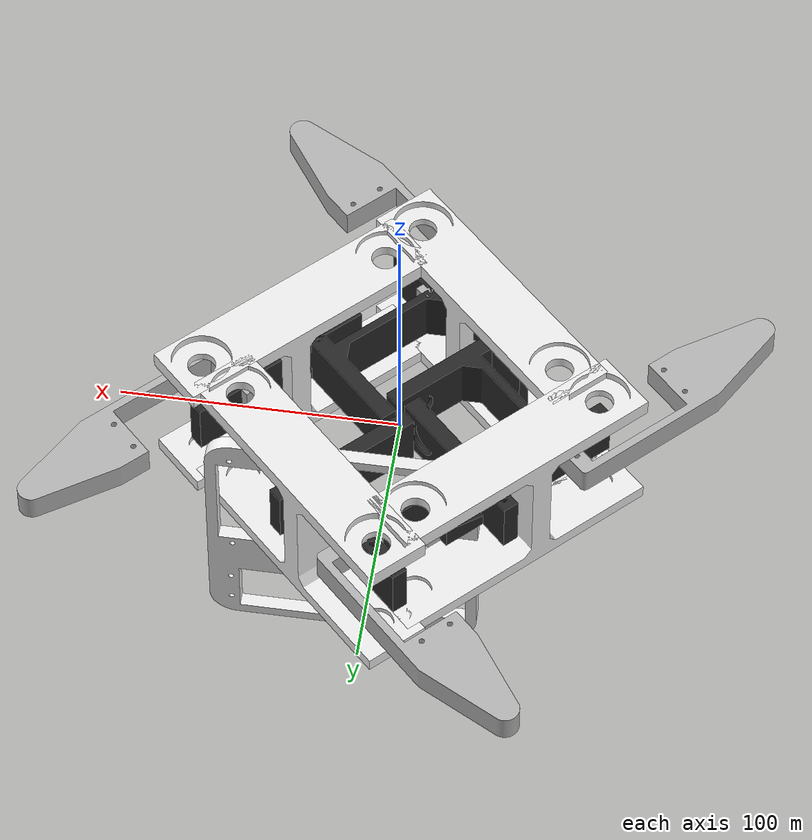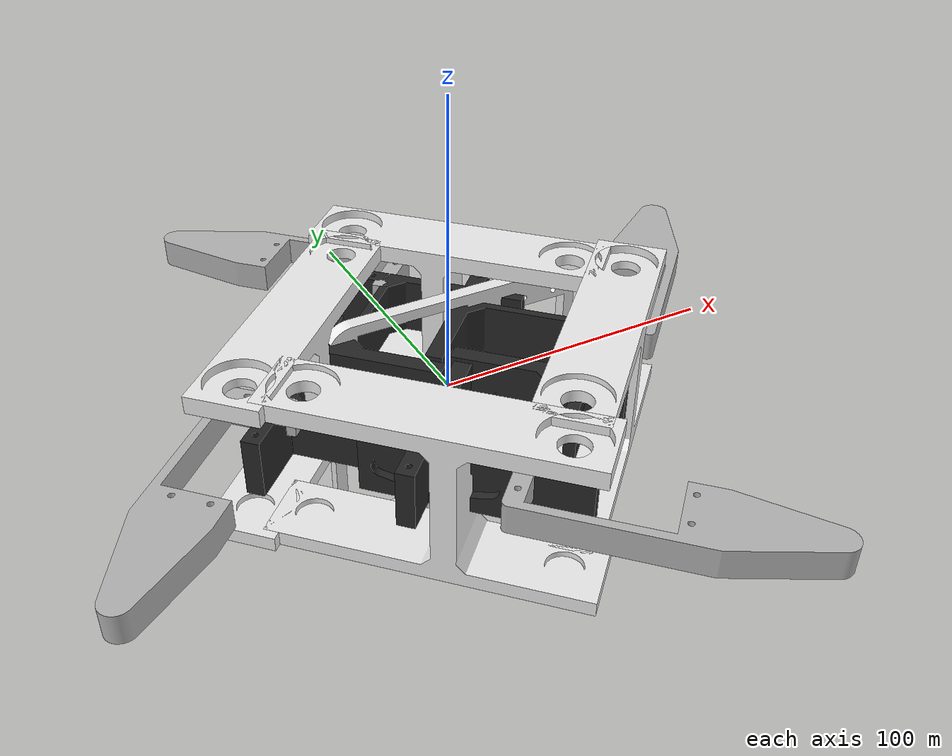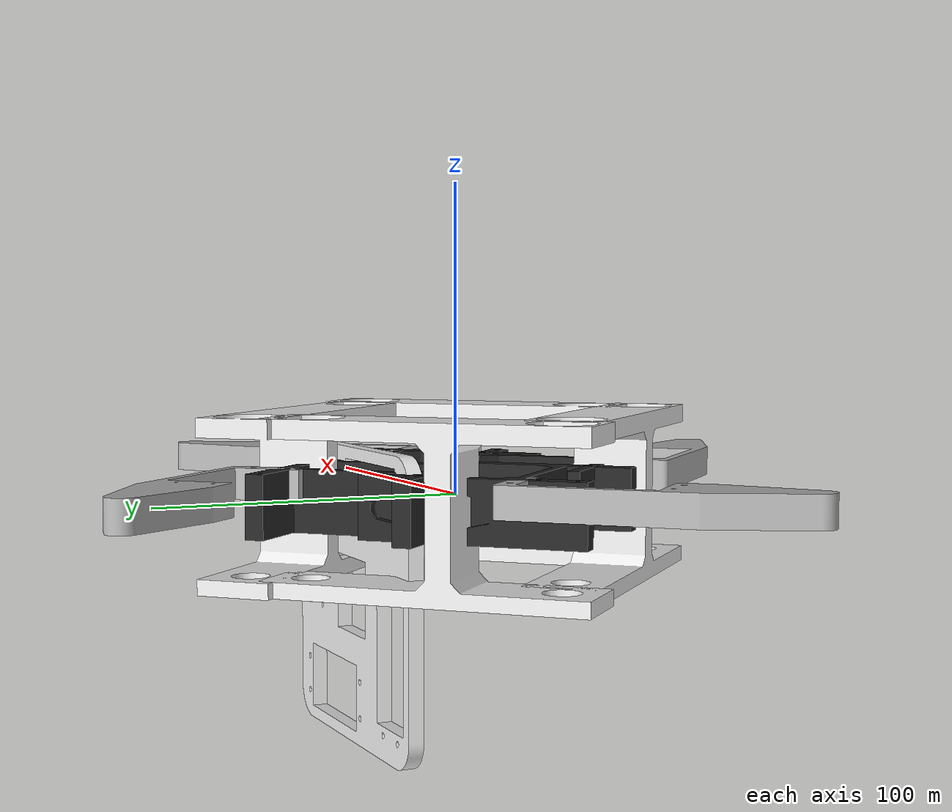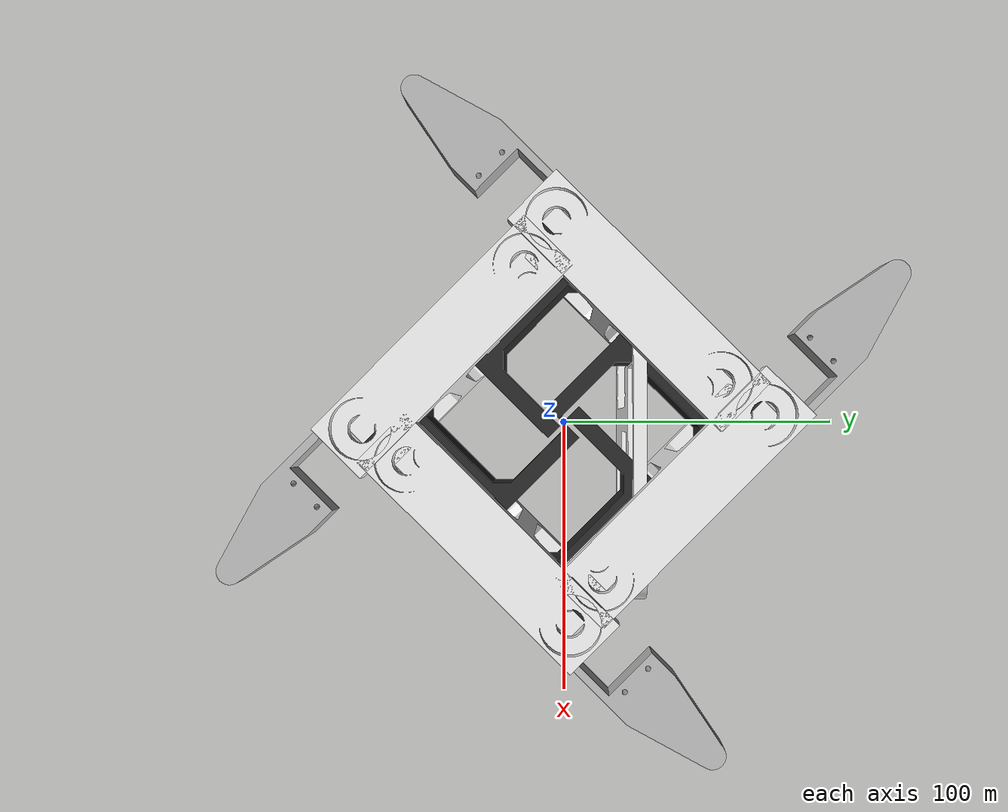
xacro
<?xml version="1.0"?>
<robot xmlns:xacro="http://www.ros.org/wiki/xacro" name="quadruped">

  <!-- [USER PARAMETERS]: EDIT CHASSIS & LINK DIMENSIONS, MASSES & MESH PATHS -->
  <!-- SPIDER / CRAWLER 12-DOF CONFIGURATION (Radial Outward Legs)            -->

  <!-- Set to 'true' once you place STL files in quadruped_description/meshes/ -->
  <xacro:property name="use_mesh_visuals" value="true" />

  <!-- Base / Central Chassis Dimensions (meters) & Mass (kg) -->
  <!-- USER EDIT: Center hub measurements -->
  <xacro:property name="body_length"  value="0.097" />
  <xacro:property name="body_width"   value="0.097" />
  <xacro:property name="body_height"  value="0.017" />
  <xacro:property name="body_mass"    value="0.240" />  <!-- Central frame, battery, controller -->

  <!-- Leg Mount Radius & Radial Offsets from Center -->
  <!-- Base is 97mm x 97mm. Hip yaw servo shafts are located at +/- 30mm, +/- 30mm -->
  <xacro:property name="mount_x"      value="0.030" />
  <xacro:property name="mount_y"      value="0.030" />

  <!-- Coxa / Hip Link Dimensions (meters) & Mass (kg) -->
  <!-- Extrapolated from CAD top-view: joint-to-joint length = 40.0mm (Hip Yaw to Thigh Pitch) -->
  <xacro:property name="coxa_length"  value="0.040" />
  <xacro:property name="coxa_width"   value="0.021" />
  <xacro:property name="coxa_height"  value="0.038" />
  <xacro:property name="coxa_mass"    value="0.066" />  <!-- U-bracket + 1x MG995/MG996 servo (~55g) -->

  <!-- Thigh / Upper Leg Link Dimensions (meters) & Mass (kg) -->
  <!-- Onshape CAD extracted: bar length = 104mm, height = 24mm, hole-to-hole = 75mm -->
  <xacro:property name="thigh_length" value="0.075" />
  <xacro:property name="thigh_width"  value="0.055" />
  <xacro:property name="thigh_height" value="0.024" />
  <xacro:property name="thigh_mass"   value="0.081" />  <!-- H-frame + 1x MG995 knee servo (~55g) -->

  <!-- Calf / Lower Leg Link / Tibia Dimensions (meters) & Mass (kg) -->
  <!-- Onshape CAD extracted: knee axis to foot tip = 80mm, max height = 26mm, thickness = 11mm -->
  <xacro:property name="calf_length"  value="0.080" />
  <xacro:property name="calf_width"   value="0.011" />
  <xacro:property name="calf_height"  value="0.026" />
  <xacro:property name="calf_mass"    value="0.0635" />  <!-- 3D printed pointed horn -->

  <!-- Foot Contact Tip -->
  <xacro:property name="foot_radius"  value="0.010" />
  <xacro:property name="foot_mass"    value="0.008" />

  <!-- Joint Limits for Spider Configuration (radians) -->
  <!-- Hip Yaw: Sweeps horizontally +/- 45 deg (+/- 0.8 rad) -->
  <xacro:property name="hip_yaw_lower"     value="-0.80" />
  <xacro:property name="hip_yaw_upper"     value="0.80" />
  <!-- Thigh Pitch: 0 = flat horizontal (as in photo), >0 = tilts downward -->
  <xacro:property name="thigh_pitch_lower" value="-0.60" />
  <xacro:property name="thigh_pitch_upper" value="1.30" />
  <!-- Knee Pitch: 0 = straight in line with thigh, >0 = bends downward -->
  <xacro:property name="knee_pitch_lower"  value="-0.40" />
  <xacro:property name="knee_pitch_upper"  value="2.00" />

  <xacro:property name="servo_max_velocity" value="6.0" />  <!-- MG996R ~0.17s/60 deg = 6.1 rad/s -->
  <xacro:property name="servo_max_effort"   value="1.0" />  <!-- MG996R ~10 kg.cm = ~1.0 Nm stall -->

  <!-- Mesh File Locations (Relative to quadruped_description/meshes/) -->
  <!-- USER EDIT: Modify file names if your STL files have different names -->
  <xacro:property name="mesh_body"  value="package://quadruped_description/meshes/CentralFrame.stl" />
  <xacro:property name="mesh_hip"   value="package://quadruped_description/meshes/Fema.stl" />
  <xacro:property name="mesh_thigh" value="package://quadruped_description/meshes/Shin.stl" />
  <xacro:property name="mesh_calf"  value="package://quadruped_description/meshes/Foot.stl" />
  <xacro:property name="mesh_foot"  value="package://quadruped_description/meshes/foot.stl" />

  <!-- Visual Materials -->
  <material name="chassis_white">
    <color rgba="0.92 0.92 0.92 1.0"/>
  </material>
  <material name="servo_black">
    <color rgba="0.15 0.15 0.15 1.0"/>
  </material>
  <material name="accent_gray">
    <color rgba="0.70 0.70 0.70 1.0"/>
  </material>
  <material name="rubber_black">
    <color rgba="0.10 0.10 0.10 1.0"/>
  </material>

  <!-- BASE FOOTPRINT & BASE LINK (Central Spider Hub)                       -->
  <link name="base_footprint"/>

  <joint name="base_footprint_joint" type="fixed">
    <parent link="base_footprint"/>
    <child link="base_link"/>
    <origin xyz="0 0 0.12" rpy="0 0 0"/>
  </joint>

  <link name="base_link">
    <visual>
      <origin xyz="0 0 0" rpy="0 0 0"/>
      <geometry>
        <xacro:if value="${use_mesh_visuals}">
          <mesh filename="${mesh_body}" scale="1 1 1"/>
        </xacro:if>
        <xacro:unless value="${use_mesh_visuals}">
          <box size="${body_length} ${body_width} ${body_height}"/>
        </xacro:unless>
      </geometry>
      <material name="chassis_white"/>
    </visual>
    <collision>
      <origin xyz="0 0 0" rpy="0 0 0"/>
      <geometry>
        <box size="${body_length} ${body_width} ${body_height}"/>
      </geometry>
    </collision>
    <inertial>
      <origin xyz="0 0 0" rpy="0 0 0"/>
      <mass value="${body_mass}"/>
      <inertia ixx="${(1.0/12.0) * body_mass * (body_width*body_width + body_height*body_height)}"
               ixy="0.0" ixz="0.0"
               iyy="${(1.0/12.0) * body_mass * (body_length*body_length + body_height*body_height)}"
               iyz="0.0"
               izz="${(1.0/12.0) * body_mass * (body_length*body_length + body_width*body_width)}"/>
    </inertial>
  </link>

  <!-- IMU Sensor Link at Chassis Geometric Center -->
  <link name="imu_link"/>
  <joint name="imu_joint" type="fixed">
    <parent link="base_link"/>
    <child link="imu_link"/>
    <origin xyz="0 0 0" rpy="0 0 0"/>
  </joint>

  <!-- SPIDER 3-DOF LEG MACRO (Radial Outward Kinematics)                    -->
  <!-- In the local leg frame:                                               -->
  <!--   +X: Radially OUTWARD along the leg                                  -->
  <!--   +Y: Horizontal tangential (perpendicular to leg)                   -->
  <!--   +Z: Upward                                                          -->
  <xacro:macro name="spider_leg_3dof" params="prefix mount_x mount_y yaw_angle">

    <!-- 1. Hip Yaw Joint: Rotates horizontally around local Z axis -->
    <joint name="${prefix}_hip_joint" type="revolute">
      <parent link="base_link"/>
      <child link="${prefix}_hip_link"/>
      <origin xyz="${mount_x} ${mount_y} 0.0" rpy="0 0 ${yaw_angle}"/>
      <axis xyz="0 0 1"/>
      <limit lower="${hip_yaw_lower}" upper="${hip_yaw_upper}"
             velocity="${servo_max_velocity}" effort="${servo_max_effort}"/>
      <dynamics damping="0.05" friction="0.02"/>
    </joint>

    <!-- Hip / Coxa Bracket Link: Extends radially outward along +X -->
    <link name="${prefix}_hip_link">
      <visual>
        <origin xyz="${coxa_length/2.0} 0 0" rpy="0 0 0"/>
        <geometry>
          <xacro:if value="${use_mesh_visuals}">
            <mesh filename="${mesh_hip}" scale="1 1 1"/>
          </xacro:if>
          <xacro:unless value="${use_mesh_visuals}">
            <box size="${coxa_length} ${coxa_width} ${coxa_height}"/>
          </xacro:unless>
        </geometry>
        <material name="servo_black"/>
      </visual>
      <collision>
        <origin xyz="${coxa_length/2.0} 0 0" rpy="0 0 0"/>
        <geometry>
          <box size="${coxa_length} ${coxa_width} ${coxa_height}"/>
        </geometry>
      </collision>
      <inertial>
        <origin xyz="${coxa_length/2.0} 0 0" rpy="0 0 0"/>
        <mass value="${coxa_mass}"/>
        <inertia ixx="${(1.0/12.0) * coxa_mass * (coxa_width*coxa_width + coxa_height*coxa_height)}"
                 ixy="0.0" ixz="0.0"
                 iyy="${(1.0/12.0) * coxa_mass * (coxa_length*coxa_length + coxa_height*coxa_height)}"
                 iyz="0.0"
                 izz="${(1.0/12.0) * coxa_mass * (coxa_length*coxa_length + coxa_width*coxa_width)}"/>
      </inertial>
    </link>

    <!-- 2. Thigh Pitch Joint: Rotates around local Y axis (perpendicular to leg) -->
    <!-- Positive rotation rotates the thigh DOWNWARD towards the ground          -->
    <joint name="${prefix}_thigh_joint" type="revolute">
      <parent link="${prefix}_hip_link"/>
      <child link="${prefix}_thigh_link"/>
      <origin xyz="${coxa_length} 0 0" rpy="0 0 0"/>
      <axis xyz="0 1 0"/>
      <limit lower="${thigh_pitch_lower}" upper="${thigh_pitch_upper}"
             velocity="${servo_max_velocity}" effort="${servo_max_effort}"/>
      <dynamics damping="0.05" friction="0.02"/>
    </joint>

    <!-- Thigh / Upper Leg Link: Extends radially outward along +X -->
    <link name="${prefix}_thigh_link">
      <visual>
        <origin xyz="${thigh_length/2.0} 0 0" rpy="0 0 0"/>
        <geometry>
          <xacro:if value="${use_mesh_visuals}">
            <mesh filename="${mesh_thigh}" scale="1 1 1"/>
          </xacro:if>
          <xacro:unless value="${use_mesh_visuals}">
            <box size="${thigh_length} ${thigh_width} ${thigh_height}"/>
          </xacro:unless>
        </geometry>
        <material name="chassis_white"/>
      </visual>
      <collision>
        <origin xyz="${thigh_length/2.0} 0 0" rpy="0 0 0"/>
        <geometry>
          <box size="${thigh_length} ${thigh_width} ${thigh_height}"/>
        </geometry>
      </collision>
      <inertial>
        <origin xyz="${thigh_length/2.0} 0 0" rpy="0 0 0"/>
        <mass value="${thigh_mass}"/>
        <inertia ixx="${(1.0/12.0) * thigh_mass * (thigh_width*thigh_width + thigh_height*thigh_height)}"
                 ixy="0.0" ixz="0.0"
                 iyy="${(1.0/12.0) * thigh_mass * (thigh_length*thigh_length + thigh_height*thigh_height)}"
                 iyz="0.0"
                 izz="${(1.0/12.0) * thigh_mass * (thigh_length*thigh_length + thigh_width*thigh_width)}"/>
      </inertial>
    </link>

    <!-- 3. Knee Pitch Joint: Rotates around local Y axis (parallel to thigh joint) -->
    <!-- Positive rotation rotates the calf DOWNWARD towards the ground            -->
    <joint name="${prefix}_knee_joint" type="revolute">
      <parent link="${prefix}_thigh_link"/>
      <child link="${prefix}_calf_link"/>
      <origin xyz="${thigh_length} 0 0" rpy="0 0 0"/>
      <axis xyz="0 1 0"/>
      <limit lower="${knee_pitch_lower}" upper="${knee_pitch_upper}"
             velocity="${servo_max_velocity}" effort="${servo_max_effort}"/>
      <dynamics damping="0.05" friction="0.02"/>
    </joint>

    <!-- Calf / Lower Leg Link: Extends radially outward along +X -->
    <link name="${prefix}_calf_link">
      <visual>
        <origin xyz="${calf_length/2.0} 0 0" rpy="0 0 0"/>
        <geometry>
          <xacro:if value="${use_mesh_visuals}">
            <mesh filename="${mesh_calf}" scale="1 1 1"/>
          </xacro:if>
          <xacro:unless value="${use_mesh_visuals}">
            <box size="${calf_length} ${calf_width} ${calf_height}"/>
          </xacro:unless>
        </geometry>
        <material name="accent_gray"/>
      </visual>
      <collision>
        <origin xyz="${calf_length/2.0} 0 0" rpy="0 0 0"/>
        <geometry>
          <box size="${calf_length} ${calf_width} ${calf_height}"/>
        </geometry>
      </collision>
      <inertial>
        <origin xyz="${calf_length/2.0} 0 0" rpy="0 0 0"/>
        <mass value="${calf_mass}"/>
        <inertia ixx="${(1.0/12.0) * calf_mass * (calf_width*calf_width + calf_height*calf_height)}"
                 ixy="0.0" ixz="0.0"
                 iyy="${(1.0/12.0) * calf_mass * (calf_length*calf_length + calf_height*calf_height)}"
                 iyz="0.0"
                 izz="${(1.0/12.0) * calf_mass * (calf_length*calf_length + calf_width*calf_width)}"/>
      </inertial>
    </link>

    <!-- Foot Tip Sphere (Contact with Ground) -->
    <joint name="${prefix}_foot_joint" type="fixed">
      <parent link="${prefix}_calf_link"/>
      <child link="${prefix}_foot_link"/>
      <origin xyz="${calf_length} 0 0" rpy="0 0 0"/>
    </joint>

    <link name="${prefix}_foot_link">
      <visual>
        <origin xyz="0 0 0" rpy="0 0 0"/>
        <geometry>
          <sphere radius="${foot_radius}"/>
        </geometry>
        <material name="rubber_black"/>
      </visual>
      <collision>
        <origin xyz="0 0 0" rpy="0 0 0"/>
        <geometry>
          <sphere radius="${foot_radius}"/>
        </geometry>
      </collision>
      <inertial>
        <origin xyz="0 0 0" rpy="0 0 0"/>
        <mass value="${foot_mass}"/>
        <inertia ixx="${(2.0/5.0) * foot_mass * foot_radius * foot_radius}"
                 ixy="0.0" ixz="0.0"
                 iyy="${(2.0/5.0) * foot_mass * foot_radius * foot_radius}"
                 iyz="0.0"
                 izz="${(2.0/5.0) * foot_mass * foot_radius * foot_radius}"/>
      </inertial>
    </link>
  </xacro:macro>

  <!-- INSTANTIATE THE 4 LEGS IN RADIAL SPIDER X-CONFIGURATION              -->
  <!-- Angles: FL = +45 deg (0.7854 rad), FR = -45 deg (-0.7854 rad)         -->
  <!--         RL = +135 deg (2.3562 rad), RR = -135 deg (-2.3562 rad)       -->
  <xacro:spider_leg_3dof prefix="fl" mount_x="${mount_x}"  mount_y="${mount_y}"   yaw_angle="0.7854"  />
  <xacro:spider_leg_3dof prefix="fr" mount_x="${mount_x}"  mount_y="${-mount_y}"  yaw_angle="-0.7854" />
  <xacro:spider_leg_3dof prefix="rl" mount_x="${-mount_x}" mount_y="${mount_y}"   yaw_angle="2.3562"  />
  <xacro:spider_leg_3dof prefix="rr" mount_x="${-mount_x}" mount_y="${-mount_y}"  yaw_angle="-2.3562" />

  <!-- Include ros2_control configuration -->
  <xacro:include filename="ros2_control.xacro"/>

</robot>
